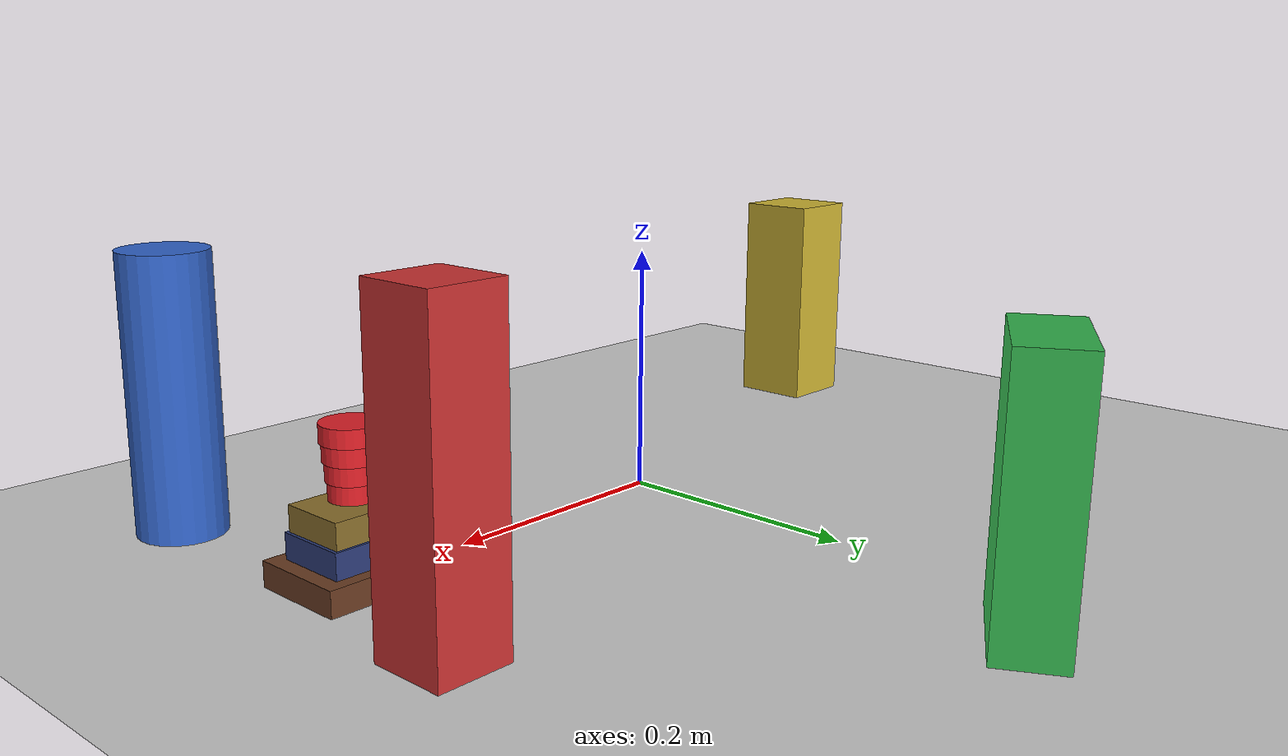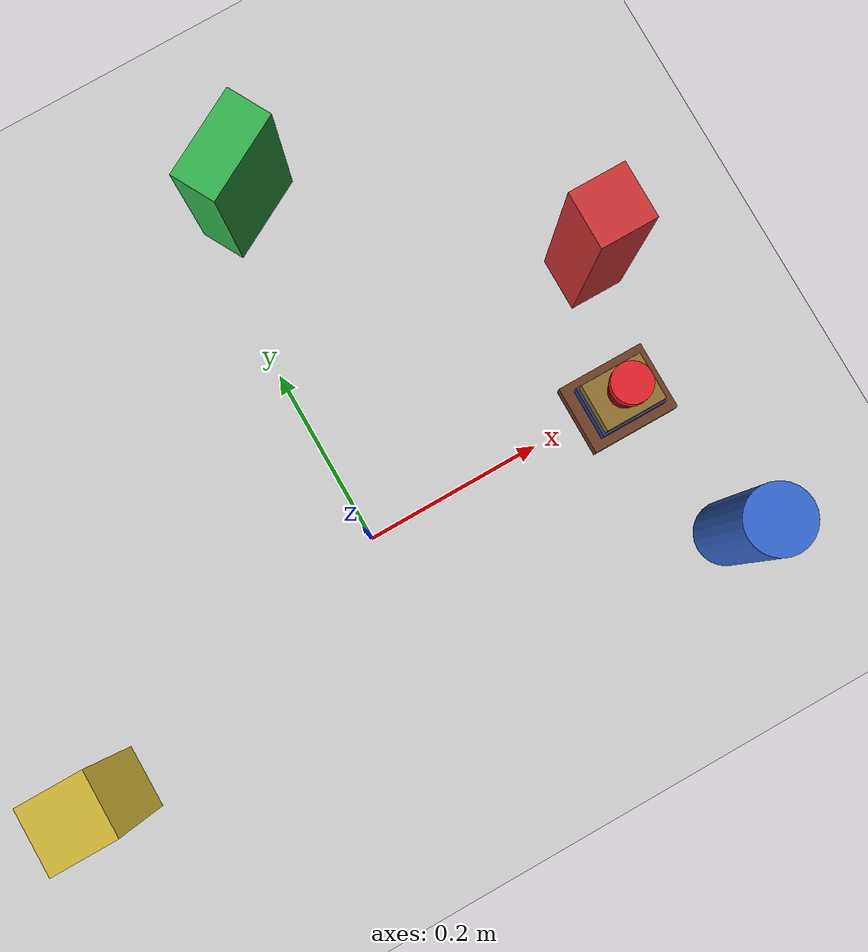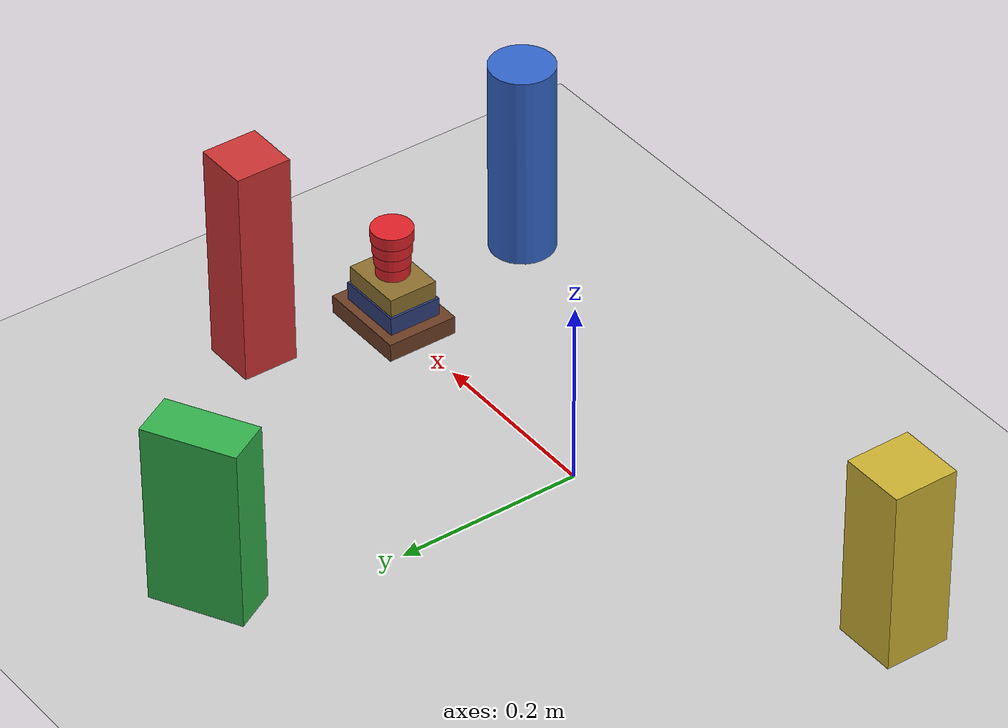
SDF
<?xml version="1.0" ?>
<sdf version="1.5">
  <world name="default">
    <!-- A global light source -->
    <include>
      <uri>model://sun</uri>
    </include>
    <!-- A ground plane -->
    <include>
      <uri>model://ground_plane</uri>
    </include>

    <model name="obstacle_box_front_left">
      <static>true</static>
      <pose>0.34 0.14 0.12 0 0 0</pose>
      <link name="link">
        <collision name="collision">
          <geometry>
            <box><size>0.06 0.06 0.24</size></box>
          </geometry>
        </collision>
        <visual name="visual">
          <geometry>
            <box><size>0.06 0.06 0.24</size></box>
          </geometry>
          <material>
            <ambient>0.8 0.2 0.2 1</ambient>
            <diffuse>0.8 0.2 0.2 1</diffuse>
          </material>
        </visual>
      </link>
    </model>

    <model name="obstacle_cylinder_front_right">
      <static>true</static>
      <pose>0.33 -0.18 0.11 0 0 0</pose>
      <link name="link">
        <collision name="collision">
          <geometry>
            <cylinder><radius>0.035</radius><length>0.22</length></cylinder>
          </geometry>
        </collision>
        <visual name="visual">
          <geometry>
            <cylinder><radius>0.035</radius><length>0.22</length></cylinder>
          </geometry>
          <material>
            <ambient>0.2 0.4 0.8 1</ambient>
            <diffuse>0.2 0.4 0.8 1</diffuse>
          </material>
        </visual>
      </link>
    </model>

    <model name="obstacle_box_left">
      <static>true</static>
      <pose>0.06 0.38 0.10 0 0 0.5</pose>
      <link name="link">
        <collision name="collision">
          <geometry>
            <box><size>0.10 0.05 0.20</size></box>
          </geometry>
        </collision>
        <visual name="visual">
          <geometry>
            <box><size>0.10 0.05 0.20</size></box>
          </geometry>
          <material>
            <ambient>0.2 0.7 0.3 1</ambient>
            <diffuse>0.2 0.7 0.3 1</diffuse>
          </material>
        </visual>
      </link>
    </model>

    <model name="obstacle_box_behind">
      <static>true</static>
      <pose>-0.36 -0.10 0.10 0 0 0</pose>
      <link name="link">
        <collision name="collision">
          <geometry>
            <box><size>0.07 0.07 0.20</size></box>
          </geometry>
        </collision>
        <visual name="visual">
          <geometry>
            <box><size>0.07 0.07 0.20</size></box>
          </geometry>
          <material>
            <ambient>0.8 0.7 0.2 1</ambient>
            <diffuse>0.8 0.7 0.2 1</diffuse>
          </material>
        </visual>
      </link>
    </model>

    <model name="book_stack">
      <static>true</static>
      <pose>0.30 0.0 0.0 0 0 0</pose>
      <link name="link">
        <collision name="book_bottom_collision">
          <pose>0 0 0.010 0 0 0</pose>
          <geometry><box><size>0.100 0.078 0.020</size></box></geometry>
          <surface>
            <friction><ode><mu>1.0</mu><mu2>1.0</mu2></ode></friction>
          </surface>
        </collision>
        <visual name="book_bottom_visual">
          <pose>0 0 0.010 0 0 0</pose>
          <geometry><box><size>0.100 0.078 0.020</size></box></geometry>
          <material>
            <ambient>0.18 0.10 0.06 1</ambient>
            <diffuse>0.42 0.24 0.14 1</diffuse>
            <specular>0.10 0.10 0.10 1</specular>
          </material>
        </visual>
        <collision name="book_middle_collision">
          <pose>0 0 0.030 0 0 0</pose>
          <geometry><box><size>0.075 0.058 0.020</size></box></geometry>
          <surface>
            <friction><ode><mu>1.0</mu><mu2>1.0</mu2></ode></friction>
          </surface>
        </collision>
        <visual name="book_middle_visual">
          <pose>0 0 0.030 0 0 0</pose>
          <geometry><box><size>0.075 0.058 0.020</size></box></geometry>
          <material>
            <ambient>0.08 0.10 0.20 1</ambient>
            <diffuse>0.18 0.24 0.48 1</diffuse>
            <specular>0.10 0.10 0.10 1</specular>
          </material>
        </visual>
        <collision name="book_top_collision">
          <pose>0 0 0.050 0 0 0</pose>
          <geometry><box><size>0.070 0.054 0.020</size></box></geometry>
          <surface>
            <friction><ode><mu>1.0</mu><mu2>1.0</mu2></ode></friction>
          </surface>
        </collision>
        <visual name="book_top_visual">
          <pose>0 0 0.050 0 0 0</pose>
          <geometry><box><size>0.070 0.054 0.020</size></box></geometry>
          <material>
            <ambient>0.20 0.16 0.06 1</ambient>
            <diffuse>0.55 0.44 0.18 1</diffuse>
            <specular>0.10 0.10 0.10 1</specular>
          </material>
        </visual>
      </link>
    </model>

    <model name="cup">
      <pose>0.30 0.0 0.0900 0 0 0</pose>
      <link name="link">
        <inertial>
          <mass>0.012</mass>
          <!-- Cylinder, m=0.012 r=0.021 h=0.055 -->
          <inertia>
            <ixx>0.00000435</ixx><iyy>0.00000435</iyy><izz>0.00000265</izz>
            <ixy>0.0</ixy><ixz>0.0</ixz><iyz>0.0</iyz>
          </inertia>
        </inertial>
        <collision name="collision">
          <geometry>
            <cylinder><radius>0.021</radius><length>0.055</length></cylinder>
          </geometry>
          <surface>
            <friction>
              <ode><mu>1.5</mu><mu2>1.5</mu2></ode>
            </friction>
            <bounce><restitution_coefficient>0.0</restitution_coefficient></bounce>
            <contact>
              <ode>
                <kp>6000.0</kp>
                <kd>150.0</kd>
                <min_depth>0.0</min_depth>
                <max_vel>0.005</max_vel>
              </ode>
            </contact>
          </surface>
        </collision>
        <visual name="body_0">
          <pose>0 0 -0.0206 0 0 0</pose>
          <geometry><cylinder><radius>0.0175</radius><length>0.0138</length></cylinder></geometry>
          <material>
            <ambient>0.62 0.09 0.11 1</ambient>
            <diffuse>0.88 0.13 0.16 1</diffuse>
            <specular>0.25 0.25 0.25 1</specular>
            <emissive>0.32 0.05 0.06 1</emissive>
          </material>
        </visual>
        <visual name="body_1">
          <pose>0 0 -0.0069 0 0 0</pose>
          <geometry><cylinder><radius>0.0190</radius><length>0.0138</length></cylinder></geometry>
          <material>
            <ambient>0.62 0.09 0.11 1</ambient>
            <diffuse>0.88 0.13 0.16 1</diffuse>
            <specular>0.25 0.25 0.25 1</specular>
            <emissive>0.32 0.05 0.06 1</emissive>
          </material>
        </visual>
        <visual name="body_2">
          <pose>0 0 0.0069 0 0 0</pose>
          <geometry><cylinder><radius>0.0205</radius><length>0.0138</length></cylinder></geometry>
          <material>
            <ambient>0.62 0.09 0.11 1</ambient>
            <diffuse>0.88 0.13 0.16 1</diffuse>
            <specular>0.25 0.25 0.25 1</specular>
            <emissive>0.32 0.05 0.06 1</emissive>
          </material>
        </visual>
        <visual name="body_3">
          <pose>0 0 0.0206 0 0 0</pose>
          <geometry><cylinder><radius>0.0220</radius><length>0.0138</length></cylinder></geometry>
          <material>
            <ambient>0.62 0.09 0.11 1</ambient>
            <diffuse>0.88 0.13 0.16 1</diffuse>
            <specular>0.25 0.25 0.25 1</specular>
            <emissive>0.32 0.05 0.06 1</emissive>
          </material>
        </visual>
        <velocity_decay>
          <linear>0.05</linear>
          <angular>0.05</angular>
        </velocity_decay>
      </link>
    </model>

  </world>
</sdf>
